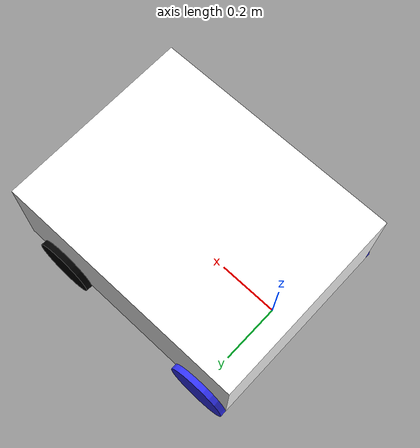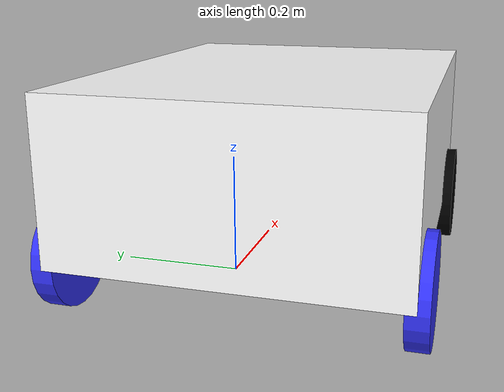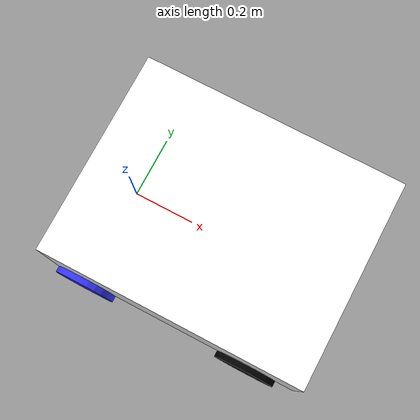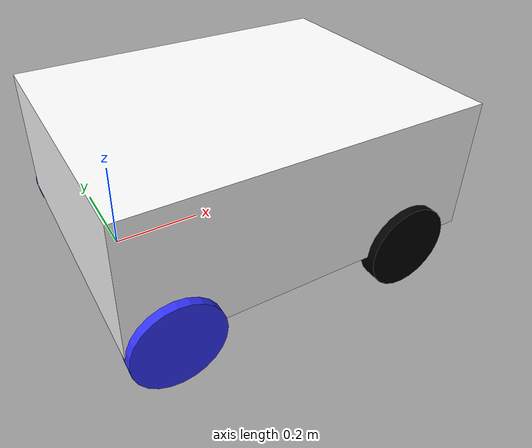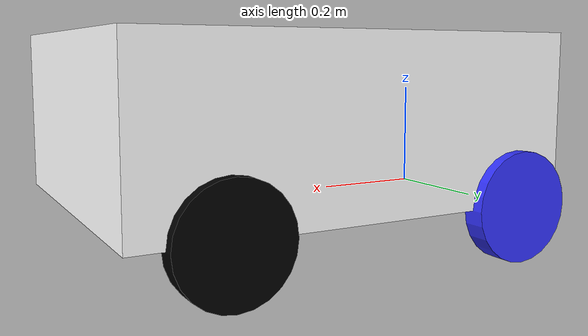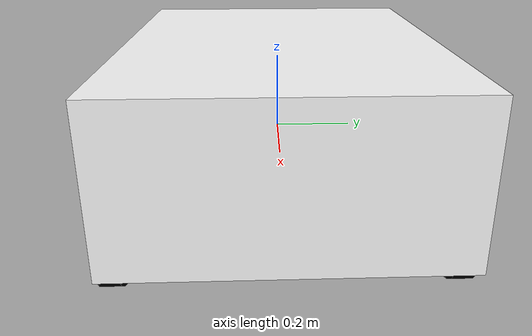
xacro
<?xml version="1.0"?>
<robot xmlns:xacro="http://www.ros.org/wiki/xacro">
<xacro:include filename="inertial_macros.xacro" />

    <material name="white">
        <color rgba="1 1 1 1"/>
    </material>

    <material name="orange">
        <color rgba="1 0.3 0.1 1"/>
    </material>

    <material name="blue">
        <color rgba="0.2 0.2 1 1"/>
    </material>

    <material name="black">
        <color rgba="0 0 0 1"/>
    </material>

    <!--BASE LINK-->
    <link name="base_link">

    </link>

    <!--CHASSIS LINK-->

    <joint name="chassis_joint" type="fixed">
        <parent link="base_link"/>
        <child link="chassis"/>
        <origin xyz="-0.1 0 0"/>
        <axis xyz="0 0 1"/>
    </joint>

    <link name="chassis">
        <visual>

            <origin xyz="0.41 0 0.155" rpy="0 0 0"/>
            <geometry>
                <box size="0.82 0.64 0.31"/>
            </geometry>
            <material name="white"/>

        </visual>

        <collision>

            <origin xyz="0.41 0 0.155" rpy="0 0 0"/>
            <geometry>
                <box size="0.82 0.64 0.31"/>
            </geometry>

        </collision>

        <xacro:inertial_box mass="0.5" x="0.3" y="0.3" z="0.15">
            <origin xyz="0.41 0 0.155" rpy="0 0 0"/>
        </xacro:inertial_box>

    </link>

    <!--LEFT WHEEL-->

<joint name="left_wheel_joint" type="continuous">
    <parent link="base_link"/>
    <child link="left_wheel"/>
    <origin xyz="0 0.32 0" rpy="-${pi/2} 0 0"/>
    <axis xyz="0 0 1"/>
</joint>

<link name="left_wheel">
    <visual>

        <geometry>
            <cylinder length="0.04" radius="0.1" />
        </geometry>
        <material name="blue"/>

    </visual>

    <collision>

        <geometry>
            <cylinder length="0.04" radius="0.1" />
        </geometry>

    </collision>

     <xacro:inertial_cylinder mass="0.1" length="0.04" radius="0.1">
        <origin xyz="0 0 0" rpy="0 0 0"/>
    </xacro:inertial_cylinder>

</link>

   <!--RIGHT  WHEEL-->

<joint name="right_wheel_joint" type="continuous">
    <parent link="base_link"/>
    <child link="right_wheel"/>
    <origin xyz="0 -0.32 0" rpy="${pi/2} 0 0"/>
    <axis xyz="0 0 -1"/>
</joint>

<link name="right_wheel">
    <visual>

        <geometry>
            <cylinder length="0.04" radius="0.1" />
        </geometry>
        <material name="blue"/>

    </visual>

    <collision>

        <geometry>
            <cylinder length="0.04" radius="0.1" />
        </geometry>

    </collision>

    <xacro:inertial_cylinder mass="0.1" length="0.04" radius="0.1">
        <origin xyz="0 0 0" rpy="0 0 0"/>
    </xacro:inertial_cylinder>

</link>

    <!--STEERING-->

    <!--LEFT-->

<joint name="steering_wheel_joint" type="revolute">
    <parent link="chassis"/>
    <child link="Steering_wheel_left"/>
    <origin xyz="0.66 0.32 0" rpy="-${pi/2} 0 0"/>
    <limit lower="-0.389" upper="0.389" effort="2" velocity="1.0"/>
    <axis xyz="0 1 0"/>
</joint>

<link name="Steering_wheel_left">
    <visual>

        <geometry>
            <cylinder radius="0.1" length="0.04" />
        </geometry>
        <material name="black"/>

    </visual>

    <collision>

        <geometry>
            <cylinder radius="0.1" length="0.04" />
        </geometry>

    </collision>

    <xacro:inertial_cylinder mass="0.1" length="0.04" radius="0.1">
        <origin xyz="0 0 0" rpy="0 0 0"/>
    </xacro:inertial_cylinder>

</link>
<gazebo reference="Steering_wheel_left">
    <mu1 value="0.1"/>
    <mu2 value="0.1"/>
</gazebo>

    <!--RIGHT-->

<joint name="steering_wheel_joint_r" type="revolute">
    <parent link="chassis"/>
    <child link="Steering_wheel_right"/>
    <origin xyz="0.66 -0.32 0" rpy="-${pi/2} 0 0"/>
    <limit lower="-0.389" upper="0.389" effort="2" velocity="1.0"/>
    <axis xyz="0 1 0"/>
</joint>

<link name="Steering_wheel_right">

    <visual>
        <geometry>
            <cylinder radius="0.1" length="0.04" />
        </geometry>
        <material name="black"/>
    </visual>

    <collision>
        <geometry>
            <cylinder radius="0.1" length="0.04" />
        </geometry>
        <material name="black"/>
    </collision>

    <xacro:inertial_cylinder mass="0.1" length="0.04" radius="0.1">
        <origin xyz="0 0 0" rpy="0 0 0"/>
    </xacro:inertial_cylinder>
</link>
<gazebo reference="Steering_wheel_right">
    <mu1 value="0.1"/>
    <mu2 value="0.1"/>
</gazebo>

 </robot>
